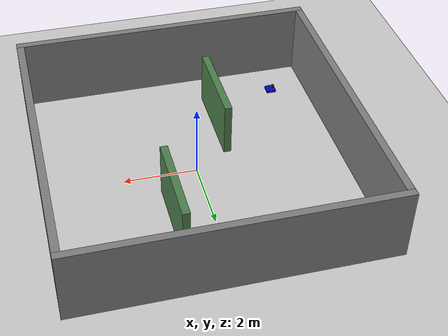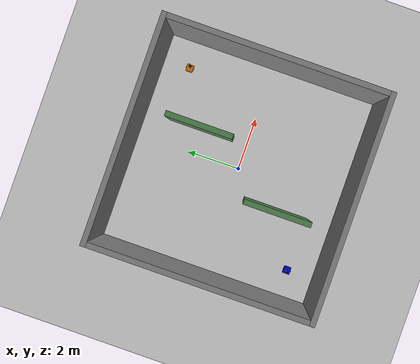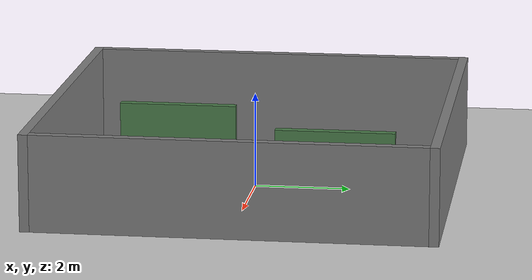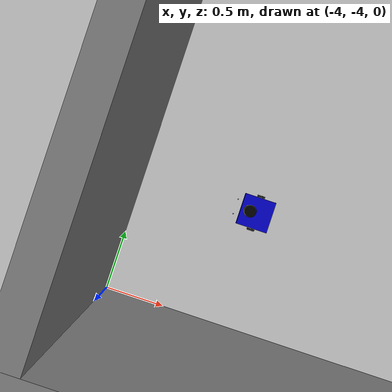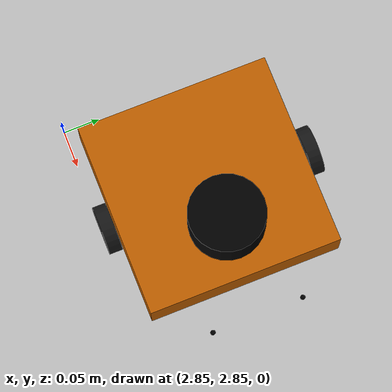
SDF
<?xml version="1.0"?>
<sdf version="1.9">
  <world name="warehouse">

    <!-- GUI plugins — same as gpu SDF; engine=ogre2 works with llvmpipe too -->
    <gui fullscreen="0">
      <plugin filename="MinimalScene" name="3D View">
        <gz-gui>
          <title>3D View</title>
          <property type="bool" key="showTitleBar">false</property>
          <property type="string" key="state">docked</property>
        </gz-gui>
        <engine>ogre2</engine>
        <scene>scene</scene>
        <ambient_light>0.4 0.4 0.4</ambient_light>
        <background_color>0.7 0.7 0.7</background_color>
        <camera_pose>-6 0 6 0 0.5 0</camera_pose>
      </plugin>
      <plugin filename="GzSceneManager" name="Scene Manager">
        <gz-gui>
          <property key="resizable" type="bool">false</property>
          <property key="width" type="double">5</property>
          <property key="height" type="double">5</property>
          <property key="state" type="string">floating</property>
          <property key="showTitleBar">false</property>
        </gz-gui>
      </plugin>
      <plugin filename="InteractiveViewControl" name="Interactive view control">
        <gz-gui>
          <property key="resizable" type="bool">false</property>
          <property key="state" type="string">floating</property>
          <property key="showTitleBar">false</property>
        </gz-gui>
      </plugin>
      <plugin filename="WorldControl" name="World control">
        <gz-gui>
          <title>World control</title>
          <property type="bool" key="showTitleBar">false</property>
          <property type="bool" key="resizable">false</property>
          <property type="double" key="height">72</property>
          <property type="double" key="z">1</property>
          <property type="string" key="state">floating</property>
          <anchors target="3D View">
            <line own="left" target="left"/>
            <line own="bottom" target="bottom"/>
          </anchors>
        </gz-gui>
        <play_pause>true</play_pause>
        <step>true</step>
      </plugin>
      <plugin filename="WorldStats" name="World stats">
        <gz-gui>
          <title>World stats</title>
          <property type="bool" key="showTitleBar">false</property>
          <property type="bool" key="resizable">false</property>
          <property type="double" key="height">110</property>
          <property type="double" key="z">1</property>
          <property type="string" key="state">floating</property>
          <anchors target="3D View">
            <line own="right" target="right"/>
            <line own="bottom" target="bottom"/>
          </anchors>
        </gz-gui>
        <sim_time>true</sim_time>
        <real_time>true</real_time>
        <real_time_factor>true</real_time_factor>
        <iterations>true</iterations>
      </plugin>
    </gui>

    <!-- World plugins -->
    <plugin filename="gz-sim-physics-system"
            name="gz::sim::systems::Physics"/>
    <plugin filename="gz-sim-user-commands-system"
            name="gz::sim::systems::UserCommands"/>
    <plugin filename="gz-sim-scene-broadcaster-system"
            name="gz::sim::systems::SceneBroadcaster"/>
    <plugin filename="gz-sim-sensors-system"
            name="gz::sim::systems::Sensors">
      <render_engine>ogre2</render_engine>
    </plugin>
    <plugin filename="gz-sim-imu-system"
            name="gz::sim::systems::Imu"/>
    <plugin filename="gz-sim-contact-system"
            name="gz::sim::systems::Contact"/>

    <gravity>0 0 -9.81</gravity>
    <magnetic_field>6e-6 2.3e-5 -4.2e-5</magnetic_field>
    <atmosphere type="adiabatic"/>

    <scene>
      <ambient>0.4 0.4 0.4 1</ambient>
      <background>0.7 0.7 0.7 1</background>
      <shadows>false</shadows>
    </scene>

    <light name="sun" type="directional">
      <cast_shadows>false</cast_shadows>
      <pose>0 0 10 0 0 0</pose>
      <diffuse>0.8 0.8 0.8 1</diffuse>
      <specular>0.2 0.2 0.2 1</specular>
      <direction>-0.5 0.1 -0.9</direction>
    </light>

    <!-- Ground plane -->
    <model name="ground_plane">
      <static>true</static>
      <link name="link">
        <collision name="collision">
          <geometry><plane><normal>0 0 1</normal><size>100 100</size></plane></geometry>
          <surface><contact><collide_bitmask>0xffff</collide_bitmask></contact></surface>
        </collision>
        <visual name="visual">
          <geometry><plane><normal>0 0 1</normal><size>100 100</size></plane></geometry>
          <material><ambient>0.8 0.8 0.8 1</ambient><diffuse>0.8 0.8 0.8 1</diffuse></material>
        </visual>
      </link>
    </model>

    <model name="wall_north">
      <static>true</static>
      <pose>0 4.1 1.0 0 0 0</pose>
      <link name="link">
        <collision name="collision"><geometry><box><size>8.4 0.2 2.0</size></box></geometry></collision>
        <visual name="visual">
          <geometry><box><size>8.4 0.2 2.0</size></box></geometry>
          <material><ambient>0.5 0.5 0.5 1</ambient><diffuse>0.5 0.5 0.5 1</diffuse></material>
        </visual>
      </link>
    </model>

    <model name="wall_south">
      <static>true</static>
      <pose>0 -4.1 1.0 0 0 0</pose>
      <link name="link">
        <collision name="collision"><geometry><box><size>8.4 0.2 2.0</size></box></geometry></collision>
        <visual name="visual">
          <geometry><box><size>8.4 0.2 2.0</size></box></geometry>
          <material><ambient>0.5 0.5 0.5 1</ambient><diffuse>0.5 0.5 0.5 1</diffuse></material>
        </visual>
      </link>
    </model>

    <model name="wall_east">
      <static>true</static>
      <pose>4.1 0 1.0 0 0 0</pose>
      <link name="link">
        <collision name="collision"><geometry><box><size>0.2 8.0 2.0</size></box></geometry></collision>
        <visual name="visual">
          <geometry><box><size>0.2 8.0 2.0</size></box></geometry>
          <material><ambient>0.5 0.5 0.5 1</ambient><diffuse>0.5 0.5 0.5 1</diffuse></material>
        </visual>
      </link>
    </model>

    <model name="wall_west">
      <static>true</static>
      <pose>-4.1 0 1.0 0 0 0</pose>
      <link name="link">
        <collision name="collision"><geometry><box><size>0.2 8.0 2.0</size></box></geometry></collision>
        <visual name="visual">
          <geometry><box><size>0.2 8.0 2.0</size></box></geometry>
          <material><ambient>0.5 0.5 0.5 1</ambient><diffuse>0.5 0.5 0.5 1</diffuse></material>
        </visual>
      </link>
    </model>

    <!-- Shelf 1: north of centre -->
    <model name="shelf_north">
      <static>true</static>
      <pose>1.0 1.8 0.75 0 0 0</pose>
      <link name="link">
        <collision name="collision"><geometry><box><size>0.2 2.5 1.5</size></box></geometry></collision>
        <visual name="visual">
          <geometry><box><size>0.2 2.5 1.5</size></box></geometry>
          <material><ambient>0.3 0.5 0.3 1</ambient><diffuse>0.3 0.5 0.3 1</diffuse></material>
        </visual>
      </link>
    </model>

    <!-- Shelf 2: south of centre -->
    <model name="shelf_south">
      <static>true</static>
      <pose>-1.0 -1.8 0.75 0 0 0</pose>
      <link name="link">
        <collision name="collision"><geometry><box><size>0.2 2.5 1.5</size></box></geometry></collision>
        <visual name="visual">
          <geometry><box><size>0.2 2.5 1.5</size></box></geometry>
          <material><ambient>0.3 0.5 0.3 1</ambient><diffuse>0.3 0.5 0.3 1</diffuse></material>
        </visual>
      </link>
    </model>

    <model name="turtlebot3_waffle">
      <pose>-3.0 -3.0 0.0 0 0 0</pose>

      <!-- base_footprint: virtual reference frame at ground level -->
      <link name="base_footprint">
        <pose>0 0 0 0 0 0</pose>
        <inertial><mass>0.001</mass></inertial>
      </link>

      <!-- base_link: chassis -->
      <link name="base_link">
        <pose>0 0 0.010 0 0 0</pose>
        <inertial>
          <mass>1.3729096</mass>
          <inertia>
            <ixx>8.7002e-3</ixx><ixy>-4.24e-5</ixy><ixz>1.4876e-4</ixz>
            <iyy>8.6167e-3</iyy><iyz>-2.96e-5</iyz>
            <izz>1.3922e-2</izz>
          </inertia>
        </inertial>
        <collision name="base_collision">
          <geometry><box><size>0.266 0.266 0.094</size></box></geometry>
        </collision>
        <visual name="base_visual">
          <geometry><box><size>0.266 0.266 0.094</size></box></geometry>
          <material><ambient>0.0 0.0 0.8 1</ambient><diffuse>0.0 0.0 0.8 1</diffuse></material>
        </visual>
      </link>

      <!-- wheel_left_link -->
      <link name="wheel_left_link">
        <pose>0.0 0.144 0.023 -1.5707963 0 0</pose>
        <inertial>
          <mass>0.0284989</mass>
          <inertia><ixx>1.1175e-5</ixx><ixy>0</ixy><ixz>0</ixz><iyy>1.1175e-5</iyy><iyz>0</iyz><izz>2.0336e-5</izz></inertia>
        </inertial>
        <collision name="collision">
          <geometry><cylinder><radius>0.033</radius><length>0.018</length></cylinder></geometry>
        </collision>
        <visual name="visual">
          <geometry><cylinder><radius>0.033</radius><length>0.018</length></cylinder></geometry>
          <material><ambient>0.1 0.1 0.1 1</ambient><diffuse>0.1 0.1 0.1 1</diffuse></material>
        </visual>
      </link>

      <!-- wheel_right_link -->
      <link name="wheel_right_link">
        <pose>0.0 -0.144 0.023 -1.5707963 0 0</pose>
        <inertial>
          <mass>0.0284989</mass>
          <inertia><ixx>1.1175e-5</ixx><ixy>0</ixy><ixz>0</ixz><iyy>1.1175e-5</iyy><iyz>0</iyz><izz>2.0336e-5</izz></inertia>
        </inertial>
        <collision name="collision">
          <geometry><cylinder><radius>0.033</radius><length>0.018</length></cylinder></geometry>
        </collision>
        <visual name="visual">
          <geometry><cylinder><radius>0.033</radius><length>0.018</length></cylinder></geometry>
          <material><ambient>0.1 0.1 0.1 1</ambient><diffuse>0.1 0.1 0.1 1</diffuse></material>
        </visual>
      </link>

      <!-- caster_back_left_link -->
      <link name="caster_back_left_link">
        <pose>-0.177 0.064 -0.004 0 0 0</pose>
        <inertial><mass>0.001</mass><inertia><ixx>1e-6</ixx><ixy>0</ixy><ixz>0</ixz><iyy>1e-6</iyy><iyz>0</iyz><izz>1e-6</izz></inertia></inertial>
        <collision name="collision">
          <geometry><sphere><radius>0.005</radius></sphere></geometry>
          <surface><contact><ode><soft_cfm>0</soft_cfm><soft_erp>0.2</soft_erp><kp>1e+5</kp><kd>1</kd><min_depth>0.001</min_depth><max_vel>0.1</max_vel></ode></contact></surface>
        </collision>
        <visual name="visual">
          <geometry><sphere><radius>0.005</radius></sphere></geometry>
          <material><ambient>0.0 0.0 0.0 1</ambient></material>
        </visual>
      </link>

      <!-- caster_back_right_link -->
      <link name="caster_back_right_link">
        <pose>-0.177 -0.064 -0.004 0 0 0</pose>
        <inertial><mass>0.001</mass><inertia><ixx>1e-6</ixx><ixy>0</ixy><ixz>0</ixz><iyy>1e-6</iyy><iyz>0</iyz><izz>1e-6</izz></inertia></inertial>
        <collision name="collision">
          <geometry><sphere><radius>0.005</radius></sphere></geometry>
          <surface><contact><ode><soft_cfm>0</soft_cfm><soft_erp>0.2</soft_erp><kp>1e+5</kp><kd>1</kd><min_depth>0.001</min_depth><max_vel>0.1</max_vel></ode></contact></surface>
        </collision>
        <visual name="visual">
          <geometry><sphere><radius>0.005</radius></sphere></geometry>
          <material><ambient>0.0 0.0 0.0 1</ambient></material>
        </visual>
      </link>

      <!-- imu_link -->
      <link name="imu_link">
        <pose>-0.032 0 0.068 0 0 0</pose>
        <inertial><mass>0.001</mass><inertia><ixx>1e-6</ixx><ixy>0</ixy><ixz>0</ixz><iyy>1e-6</iyy><iyz>0</iyz><izz>1e-6</izz></inertia></inertial>
        <sensor name="imu" type="imu">
          <always_on>true</always_on>
          <update_rate>200</update_rate>
          <topic>/robot_1/imu</topic>
          <imu>
            <angular_velocity><x><noise type="gaussian"><mean>0</mean><stddev>2e-4</stddev></noise></x><y><noise type="gaussian"><mean>0</mean><stddev>2e-4</stddev></noise></y><z><noise type="gaussian"><mean>0</mean><stddev>2e-4</stddev></noise></z></angular_velocity>
            <linear_acceleration><x><noise type="gaussian"><mean>0</mean><stddev>1.7e-2</stddev></noise></x><y><noise type="gaussian"><mean>0</mean><stddev>1.7e-2</stddev></noise></y><z><noise type="gaussian"><mean>0</mean><stddev>1.7e-2</stddev></noise></z></linear_acceleration>
          </imu>
        </sensor>
      </link>

      <!-- base_scan: CPU lidar (software ray-casting) -->
      <link name="base_scan">
        <pose>-0.064 0 0.121 0 0 0</pose>
        <inertial><mass>0.114</mass><inertia><ixx>1.0e-3</ixx><ixy>0</ixy><ixz>0</ixz><iyy>1.0e-3</iyy><iyz>0</iyz><izz>1.0e-3</izz></inertia></inertial>
        <collision name="collision">
          <geometry><cylinder><radius>0.0508</radius><length>0.055</length></cylinder></geometry>
        </collision>
        <visual name="visual">
          <geometry><cylinder><radius>0.0508</radius><length>0.055</length></cylinder></geometry>
          <material><ambient>0.0 0.0 0.0 1</ambient></material>
        </visual>
        <sensor name="lidar" type="lidar">
          <pose>0 0 0 0 0 0</pose>
          <topic>/robot_1/scan</topic>
          <update_rate>10</update_rate>
          <ray>
            <scan>
              <horizontal>
                <samples>360</samples>
                <resolution>1</resolution>
                <min_angle>-3.14159265</min_angle>
                <max_angle>3.14159265</max_angle>
              </horizontal>
              <vertical>
                <samples>1</samples>
                <min_angle>0</min_angle>
                <max_angle>0</max_angle>
              </vertical>
            </scan>
            <range>
              <min>0.12</min>
              <max>3.5</max>
              <resolution>0.015</resolution>
            </range>
            <noise>
              <type>gaussian</type>
              <mean>0</mean>
              <stddev>0.01</stddev>
            </noise>
          </ray>
          <visualize>false</visualize>
          <always_on>true</always_on>
        </sensor>
      </link>

      <!-- Joints -->
      <joint name="base_joint" type="fixed">
        <parent>base_footprint</parent>
        <child>base_link</child>
      </joint>

      <joint name="wheel_left_joint" type="revolute">
        <parent>base_link</parent>
        <child>wheel_left_link</child>
        <axis><xyz>0 0 1</xyz><limit><effort>100</effort><velocity>100</velocity></limit></axis>
      </joint>

      <joint name="wheel_right_joint" type="revolute">
        <parent>base_link</parent>
        <child>wheel_right_link</child>
        <axis><xyz>0 0 1</xyz><limit><effort>100</effort><velocity>100</velocity></limit></axis>
      </joint>

      <joint name="caster_back_left_joint" type="ball">
        <parent>base_link</parent>
        <child>caster_back_left_link</child>
      </joint>

      <joint name="caster_back_right_joint" type="ball">
        <parent>base_link</parent>
        <child>caster_back_right_link</child>
      </joint>

      <joint name="imu_joint" type="fixed">
        <parent>base_link</parent>
        <child>imu_link</child>
      </joint>

      <joint name="scan_joint" type="fixed">
        <parent>base_link</parent>
        <child>base_scan</child>
      </joint>

      <!-- DiffDrive plugin -->
      <plugin filename="gz-sim-diff-drive-system"
              name="gz::sim::systems::DiffDrive">
        <left_joint>wheel_left_joint</left_joint>
        <right_joint>wheel_right_joint</right_joint>
        <wheel_separation>0.287</wheel_separation>
        <wheel_radius>0.033</wheel_radius>
        <odom_publish_frequency>50</odom_publish_frequency>
        <topic>/robot_1/cmd_vel</topic>
        <odom_topic>/robot_1/odom</odom_topic>
        <tf_topic>/robot_1/tf</tf_topic>
        <frame_id>odom</frame_id>
        <child_frame_id>base_footprint</child_frame_id>
        <min_acceleration>-1</min_acceleration>
        <max_acceleration>1</max_acceleration>
      </plugin>

      <plugin filename="gz-sim-joint-state-publisher-system"
              name="gz::sim::systems::JointStatePublisher">
        <topic>/robot_1/joint_states</topic>
      </plugin>

    </model>

    <model name="turtlebot3_waffle_2">
      <pose>3.0 3.0 0.0 0 0 3.14159</pose>

      <link name="base_footprint">
        <pose>0 0 0 0 0 0</pose>
        <inertial><mass>0.001</mass></inertial>
      </link>

      <link name="base_link">
        <pose>0 0 0.010 0 0 0</pose>
        <inertial>
          <mass>1.3729096</mass>
          <inertia><ixx>8.7002e-3</ixx><ixy>-4.24e-5</ixy><ixz>1.4876e-4</ixz><iyy>8.6167e-3</iyy><iyz>-2.96e-5</iyz><izz>1.3922e-2</izz></inertia>
        </inertial>
        <collision name="base_collision"><geometry><box><size>0.266 0.266 0.094</size></box></geometry></collision>
        <visual name="base_visual">
          <geometry><box><size>0.266 0.266 0.094</size></box></geometry>
          <material><ambient>0.8 0.4 0.0 1</ambient><diffuse>0.8 0.4 0.0 1</diffuse></material>
        </visual>
      </link>

      <link name="wheel_left_link">
        <pose>0.0 0.144 0.023 -1.5707963 0 0</pose>
        <inertial><mass>0.0284989</mass><inertia><ixx>1.1175e-5</ixx><ixy>0</ixy><ixz>0</ixz><iyy>1.1175e-5</iyy><iyz>0</iyz><izz>2.0336e-5</izz></inertia></inertial>
        <collision name="collision"><geometry><cylinder><radius>0.033</radius><length>0.018</length></cylinder></geometry></collision>
        <visual name="visual"><geometry><cylinder><radius>0.033</radius><length>0.018</length></cylinder></geometry><material><ambient>0.1 0.1 0.1 1</ambient><diffuse>0.1 0.1 0.1 1</diffuse></material></visual>
      </link>

      <link name="wheel_right_link">
        <pose>0.0 -0.144 0.023 -1.5707963 0 0</pose>
        <inertial><mass>0.0284989</mass><inertia><ixx>1.1175e-5</ixx><ixy>0</ixy><ixz>0</ixz><iyy>1.1175e-5</iyy><iyz>0</iyz><izz>2.0336e-5</izz></inertia></inertial>
        <collision name="collision"><geometry><cylinder><radius>0.033</radius><length>0.018</length></cylinder></geometry></collision>
        <visual name="visual"><geometry><cylinder><radius>0.033</radius><length>0.018</length></cylinder></geometry><material><ambient>0.1 0.1 0.1 1</ambient><diffuse>0.1 0.1 0.1 1</diffuse></material></visual>
      </link>

      <link name="caster_back_left_link">
        <pose>-0.177 0.064 -0.004 0 0 0</pose>
        <inertial><mass>0.001</mass><inertia><ixx>1e-6</ixx><ixy>0</ixy><ixz>0</ixz><iyy>1e-6</iyy><iyz>0</iyz><izz>1e-6</izz></inertia></inertial>
        <collision name="collision"><geometry><sphere><radius>0.005</radius></sphere></geometry><surface><contact><ode><soft_cfm>0</soft_cfm><soft_erp>0.2</soft_erp><kp>1e+5</kp><kd>1</kd><min_depth>0.001</min_depth><max_vel>0.1</max_vel></ode></contact></surface></collision>
        <visual name="visual"><geometry><sphere><radius>0.005</radius></sphere></geometry><material><ambient>0.0 0.0 0.0 1</ambient></material></visual>
      </link>

      <link name="caster_back_right_link">
        <pose>-0.177 -0.064 -0.004 0 0 0</pose>
        <inertial><mass>0.001</mass><inertia><ixx>1e-6</ixx><ixy>0</ixy><ixz>0</ixz><iyy>1e-6</iyy><iyz>0</iyz><izz>1e-6</izz></inertia></inertial>
        <collision name="collision"><geometry><sphere><radius>0.005</radius></sphere></geometry><surface><contact><ode><soft_cfm>0</soft_cfm><soft_erp>0.2</soft_erp><kp>1e+5</kp><kd>1</kd><min_depth>0.001</min_depth><max_vel>0.1</max_vel></ode></contact></surface></collision>
        <visual name="visual"><geometry><sphere><radius>0.005</radius></sphere></geometry><material><ambient>0.0 0.0 0.0 1</ambient></material></visual>
      </link>

      <link name="imu_link">
        <pose>-0.032 0 0.068 0 0 0</pose>
        <inertial><mass>0.001</mass><inertia><ixx>1e-6</ixx><ixy>0</ixy><ixz>0</ixz><iyy>1e-6</iyy><iyz>0</iyz><izz>1e-6</izz></inertia></inertial>
        <sensor name="imu" type="imu">
          <always_on>true</always_on><update_rate>200</update_rate>
          <topic>/robot_2/imu</topic>
          <imu>
            <angular_velocity><x><noise type="gaussian"><mean>0</mean><stddev>2e-4</stddev></noise></x><y><noise type="gaussian"><mean>0</mean><stddev>2e-4</stddev></noise></y><z><noise type="gaussian"><mean>0</mean><stddev>2e-4</stddev></noise></z></angular_velocity>
            <linear_acceleration><x><noise type="gaussian"><mean>0</mean><stddev>1.7e-2</stddev></noise></x><y><noise type="gaussian"><mean>0</mean><stddev>1.7e-2</stddev></noise></y><z><noise type="gaussian"><mean>0</mean><stddev>1.7e-2</stddev></noise></z></linear_acceleration>
          </imu>
        </sensor>
      </link>

      <link name="base_scan">
        <pose>-0.064 0 0.121 0 0 0</pose>
        <inertial><mass>0.114</mass><inertia><ixx>1.0e-3</ixx><ixy>0</ixy><ixz>0</ixz><iyy>1.0e-3</iyy><iyz>0</iyz><izz>1.0e-3</izz></inertia></inertial>
        <collision name="collision"><geometry><cylinder><radius>0.0508</radius><length>0.055</length></cylinder></geometry></collision>
        <visual name="visual"><geometry><cylinder><radius>0.0508</radius><length>0.055</length></cylinder></geometry><material><ambient>0.0 0.0 0.0 1</ambient></material></visual>
        <sensor name="lidar" type="lidar">
          <pose>0 0 0 0 0 0</pose>
          <topic>/robot_2/scan</topic>
          <update_rate>10</update_rate>
          <ray>
            <scan><horizontal><samples>360</samples><resolution>1</resolution><min_angle>-3.14159265</min_angle><max_angle>3.14159265</max_angle></horizontal><vertical><samples>1</samples><min_angle>0</min_angle><max_angle>0</max_angle></vertical></scan>
            <range><min>0.12</min><max>3.5</max><resolution>0.015</resolution></range>
            <noise><type>gaussian</type><mean>0</mean><stddev>0.01</stddev></noise>
          </ray>
          <visualize>false</visualize><always_on>true</always_on>
        </sensor>
      </link>

      <joint name="base_joint" type="fixed"><parent>base_footprint</parent><child>base_link</child></joint>
      <joint name="wheel_left_joint" type="revolute"><parent>base_link</parent><child>wheel_left_link</child><axis><xyz>0 0 1</xyz><limit><effort>100</effort><velocity>100</velocity></limit></axis></joint>
      <joint name="wheel_right_joint" type="revolute"><parent>base_link</parent><child>wheel_right_link</child><axis><xyz>0 0 1</xyz><limit><effort>100</effort><velocity>100</velocity></limit></axis></joint>
      <joint name="caster_back_left_joint" type="ball"><parent>base_link</parent><child>caster_back_left_link</child></joint>
      <joint name="caster_back_right_joint" type="ball"><parent>base_link</parent><child>caster_back_right_link</child></joint>
      <joint name="imu_joint" type="fixed"><parent>base_link</parent><child>imu_link</child></joint>
      <joint name="scan_joint" type="fixed"><parent>base_link</parent><child>base_scan</child></joint>

      <plugin filename="gz-sim-diff-drive-system" name="gz::sim::systems::DiffDrive">
        <left_joint>wheel_left_joint</left_joint><right_joint>wheel_right_joint</right_joint>
        <wheel_separation>0.287</wheel_separation><wheel_radius>0.033</wheel_radius>
        <odom_publish_frequency>50</odom_publish_frequency>
        <topic>/robot_2/cmd_vel</topic>
        <odom_topic>/robot_2/odom</odom_topic>
        <tf_topic>/robot_2/tf</tf_topic>
        <frame_id>odom</frame_id><child_frame_id>base_footprint</child_frame_id>
        <min_acceleration>-1</min_acceleration><max_acceleration>1</max_acceleration>
      </plugin>

      <plugin filename="gz-sim-joint-state-publisher-system" name="gz::sim::systems::JointStatePublisher">
        <topic>/robot_2/joint_states</topic>
      </plugin>

    </model>

  </world>
</sdf>
